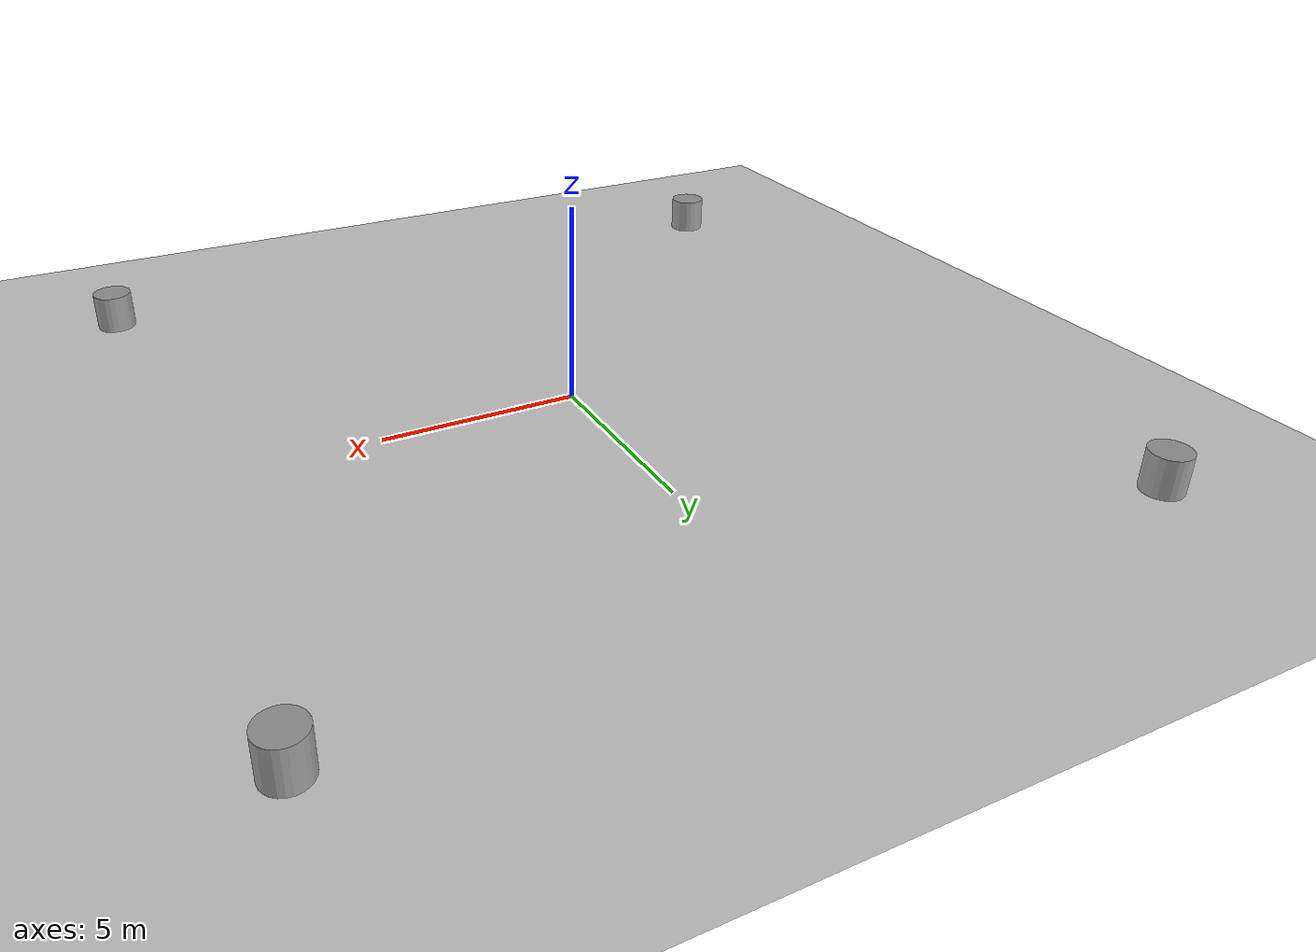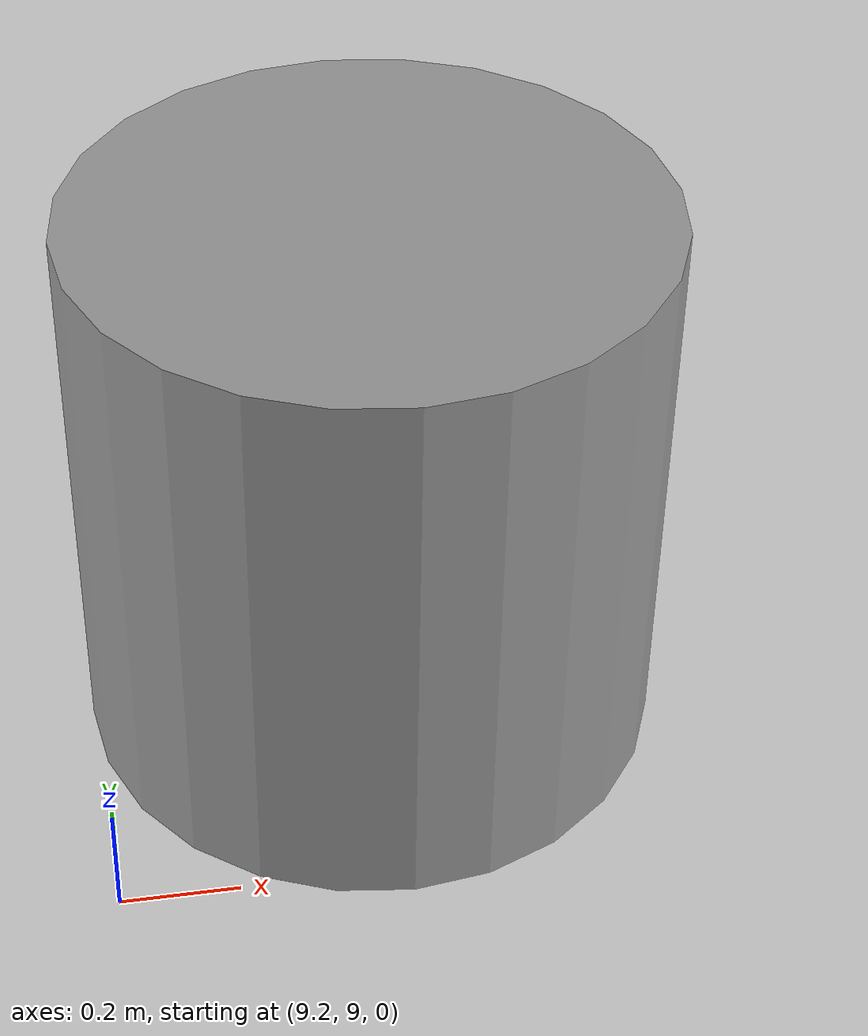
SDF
<sdf version="1.6">
 <world name="default">
  <light name="sun" type="directional">
   <pose>0 0 10 0 -0 0</pose>
   <diffuse>0.8 0.8 0.8 1</diffuse>
   <specular>0.1 0.1 0.1 1</specular>
   <attenuation>
    <range>1000</range>
    <constant>0.9</constant>
    <linear>0.01</linear>
    <quadratic>0.001</quadratic>
   </attenuation>
   <direction>-0.5 0.5 -1</direction>
  </light>
  <model name="ground_plane">
   <static>1</static>
   <link name="link">
    <collision name="collision">
     <geometry><plane><normal>0 0 1</normal><size>100 100</size></plane></geometry>
     <surface><friction><ode><mu>100</mu><mu2>50</mu2></ode></friction></surface>
    </collision>
    <visual name="visual">
     <cast_shadows>0</cast_shadows>
     <geometry><plane><normal>0 0 1</normal><size>100 100</size></plane></geometry>
     <material>
      <script><uri>file://media/materials/scripts/gazebo.material</uri><name>Gazebo/Grey</name></script>
     </material>
    </visual>
   </link>
  </model>
  <gravity>0 0 -9.8</gravity>
  <magnetic_field>6e-06 2.3e-05 -4.2e-05</magnetic_field>
  <atmosphere type="adiabatic"/>
  <physics name="default_physics" default="0" type="ode">
   <max_step_size>0.001</max_step_size>
   <real_time_factor>1</real_time_factor>
   <real_time_update_rate>1000</real_time_update_rate>
  </physics>
  <scene><ambient>0.4 0.4 0.4 1</ambient><background>0.7 0.7 0.7 1</background><shadows>1</shadows></scene>
  <spherical_coordinates>
   <surface_model>EARTH_WGS84</surface_model>
   <latitude_deg>0</latitude_deg>
   <longitude_deg>0</longitude_deg>
   <elevation>0</elevation>
   <heading_deg>0</heading_deg>
  </spherical_coordinates>
  <model name="unit_cylinder_0">
   <pose>-9.71995 9.66311 0.499993 -3e-06 -3e-06 0</pose>
   <link name="link">
    <inertial>
     <mass>1</mass>
     <inertia><ixx>0.145833</ixx><ixy>0</ixy><ixz>0</ixz><iyy>0.145833</iyy><iyz>0</iyz><izz>0.125</izz></inertia>
    </inertial>
    <collision name="collision">
     <geometry><cylinder><radius>0.5</radius><length>1</length></cylinder></geometry>
    </collision>
    <visual name="visual">
     <geometry><cylinder><radius>0.5</radius><length>1</length></cylinder></geometry>
     <material>
      <script><name>Gazebo/Grey</name><uri>file://media/materials/scripts/gazebo.material</uri></script>
     </material>
    </visual>
   </link>
  </model>
  <model name="unit_cylinder_1">
   <pose>9.68502 9.45266 0.499997 3e-06 4e-06 -0</pose>
   <link name="link">
    <inertial>
     <mass>1</mass>
     <inertia><ixx>0.145833</ixx><ixy>0</ixy><ixz>0</ixz><iyy>0.145833</iyy><iyz>0</iyz><izz>0.125</izz></inertia>
    </inertial>
    <collision name="collision">
     <geometry><cylinder><radius>0.5</radius><length>1</length></cylinder></geometry>
    </collision>
    <visual name="visual">
     <geometry><cylinder><radius>0.5</radius><length>1</length></cylinder></geometry>
     <material>
      <script><name>Gazebo/Grey</name><uri>file://media/materials/scripts/gazebo.material</uri></script>
     </material>
    </visual>
   </link>
  </model>
  <model name="unit_cylinder_2">
   <pose>9.69072 -9.65373 0.499993 -3e-06 -4e-06 -0</pose>
   <link name="link">
    <inertial>
     <mass>1</mass>
     <inertia><ixx>0.145833</ixx><ixy>0</ixy><ixz>0</ixz><iyy>0.145833</iyy><iyz>0</iyz><izz>0.125</izz></inertia>
    </inertial>
    <collision name="collision">
     <geometry><cylinder><radius>0.5</radius><length>1</length></cylinder></geometry>
    </collision>
    <visual name="visual">
     <geometry><cylinder><radius>0.5</radius><length>1</length></cylinder></geometry>
     <material>
      <script><name>Gazebo/Grey</name><uri>file://media/materials/scripts/gazebo.material</uri></script>
     </material>
    </visual>
   </link>
  </model>
  <model name="unit_cylinder_3">
   <pose>-9.14239 -9.58136 0.499997 3e-06 4e-06 -0</pose>
   <link name="link">
    <inertial>
     <mass>1</mass>
     <inertia><ixx>0.145833</ixx><ixy>0</ixy><ixz>0</ixz><iyy>0.145833</iyy><iyz>0</iyz><izz>0.125</izz></inertia>
    </inertial>
    <collision name="collision">
     <geometry><cylinder><radius>0.5</radius><length>1</length></cylinder></geometry>
    </collision>
    <visual name="visual">
     <geometry><cylinder><radius>0.5</radius><length>1</length></cylinder></geometry>
     <material>
      <script><name>Gazebo/Grey</name><uri>file://media/materials/scripts/gazebo.material</uri></script>
     </material>
    </visual>
   </link>
  </model>
 </world>
</sdf>
